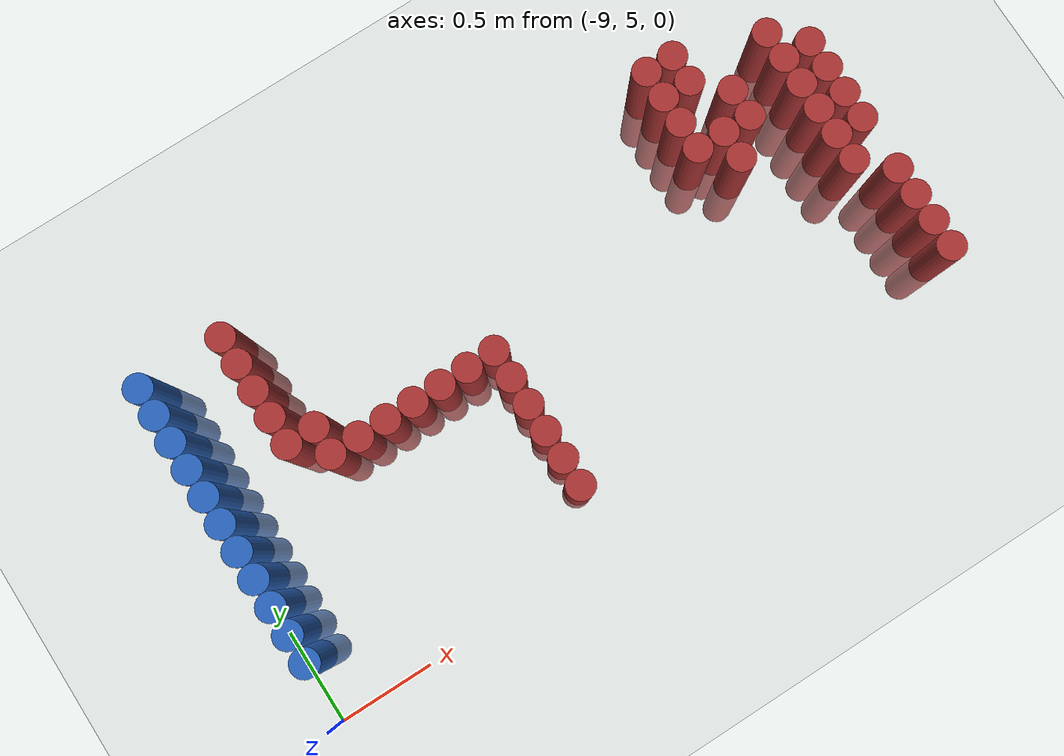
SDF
<sdf version="1.6">
 <world name="default">
  <model name="ground_plane">
   <static>1</static>
   <link name="link">
    <collision name="collision">
     <geometry><plane><normal>0 0 1</normal><size>100 100</size></plane></geometry>
     <surface><friction><ode><mu>100</mu><mu2>50</mu2></ode></friction></surface>
    </collision>
    <visual name="visual">
     <cast_shadows>0</cast_shadows>
     <geometry><plane><normal>0 0 1</normal><size>100 100</size></plane></geometry>
     <material>
      <script><uri>file://media/materials/scripts/gazebo.material</uri><name>Gazebo/Grey</name></script>
     </material>
    </visual>
   </link>
  </model>
  <model name="unit_cylinder_126">
   <static>1</static>
   <pose>-8.925000 5.325000 0.000000 0.000000 0.000000 0.000000</pose>
   <link name="link">
    <inertial>
     <mass>1</mass>
     <inertia><ixx>0.145833</ixx><ixy>0</ixy><ixz>0</ixz><iyy>0.145833</iyy><iyz>0</iyz><izz>0.125</izz></inertia>
    </inertial>
    <collision name="collision">
     <geometry><cylinder><radius>0.075000</radius><length>1</length></cylinder></geometry>
    </collision>
    <visual name="visual">
     <geometry><cylinder><radius>0.075000</radius><length>1</length></cylinder></geometry>
     <material>
      <ambient>0.152000 0.379000 0.720000 1</ambient>
      <diffuse>0.152000 0.379000 0.720000 1</diffuse>
     </material>
     <material>
      <script><name>Gazebo/Grey</name><uri>file://media/materials/scripts/gazebo.material</uri></script>
     </material>
    </visual>
   </link>
  </model>
  <model name="unit_cylinder_127">
   <static>1</static>
   <pose>-8.925000 5.475000 0.000000 0.000000 0.000000 0.000000</pose>
   <link name="link">
    <inertial>
     <mass>1</mass>
     <inertia><ixx>0.145833</ixx><ixy>0</ixy><ixz>0</ixz><iyy>0.145833</iyy><iyz>0</iyz><izz>0.125</izz></inertia>
    </inertial>
    <collision name="collision">
     <geometry><cylinder><radius>0.075000</radius><length>1</length></cylinder></geometry>
    </collision>
    <visual name="visual">
     <geometry><cylinder><radius>0.075000</radius><length>1</length></cylinder></geometry>
     <material>
      <ambient>0.152000 0.379000 0.720000 1</ambient>
      <diffuse>0.152000 0.379000 0.720000 1</diffuse>
     </material>
     <material>
      <script><name>Gazebo/Grey</name><uri>file://media/materials/scripts/gazebo.material</uri></script>
     </material>
    </visual>
   </link>
  </model>
  <model name="unit_cylinder_128">
   <static>1</static>
   <pose>-8.925000 5.625000 0.000000 0.000000 0.000000 0.000000</pose>
   <link name="link">
    <inertial>
     <mass>1</mass>
     <inertia><ixx>0.145833</ixx><ixy>0</ixy><ixz>0</ixz><iyy>0.145833</iyy><iyz>0</iyz><izz>0.125</izz></inertia>
    </inertial>
    <collision name="collision">
     <geometry><cylinder><radius>0.075000</radius><length>1</length></cylinder></geometry>
    </collision>
    <visual name="visual">
     <geometry><cylinder><radius>0.075000</radius><length>1</length></cylinder></geometry>
     <material>
      <ambient>0.152000 0.379000 0.720000 1</ambient>
      <diffuse>0.152000 0.379000 0.720000 1</diffuse>
     </material>
     <material>
      <script><name>Gazebo/Grey</name><uri>file://media/materials/scripts/gazebo.material</uri></script>
     </material>
    </visual>
   </link>
  </model>
  <model name="unit_cylinder_129">
   <static>1</static>
   <pose>-8.925000 5.775000 0.000000 0.000000 0.000000 0.000000</pose>
   <link name="link">
    <inertial>
     <mass>1</mass>
     <inertia><ixx>0.145833</ixx><ixy>0</ixy><ixz>0</ixz><iyy>0.145833</iyy><iyz>0</iyz><izz>0.125</izz></inertia>
    </inertial>
    <collision name="collision">
     <geometry><cylinder><radius>0.075000</radius><length>1</length></cylinder></geometry>
    </collision>
    <visual name="visual">
     <geometry><cylinder><radius>0.075000</radius><length>1</length></cylinder></geometry>
     <material>
      <ambient>0.152000 0.379000 0.720000 1</ambient>
      <diffuse>0.152000 0.379000 0.720000 1</diffuse>
     </material>
     <material>
      <script><name>Gazebo/Grey</name><uri>file://media/materials/scripts/gazebo.material</uri></script>
     </material>
    </visual>
   </link>
  </model>
  <model name="unit_cylinder_130">
   <static>1</static>
   <pose>-8.925000 5.925000 0.000000 0.000000 0.000000 0.000000</pose>
   <link name="link">
    <inertial>
     <mass>1</mass>
     <inertia><ixx>0.145833</ixx><ixy>0</ixy><ixz>0</ixz><iyy>0.145833</iyy><iyz>0</iyz><izz>0.125</izz></inertia>
    </inertial>
    <collision name="collision">
     <geometry><cylinder><radius>0.075000</radius><length>1</length></cylinder></geometry>
    </collision>
    <visual name="visual">
     <geometry><cylinder><radius>0.075000</radius><length>1</length></cylinder></geometry>
     <material>
      <ambient>0.152000 0.379000 0.720000 1</ambient>
      <diffuse>0.152000 0.379000 0.720000 1</diffuse>
     </material>
     <material>
      <script><name>Gazebo/Grey</name><uri>file://media/materials/scripts/gazebo.material</uri></script>
     </material>
    </visual>
   </link>
  </model>
  <model name="unit_cylinder_131">
   <static>1</static>
   <pose>-8.925000 6.075000 0.000000 0.000000 0.000000 0.000000</pose>
   <link name="link">
    <inertial>
     <mass>1</mass>
     <inertia><ixx>0.145833</ixx><ixy>0</ixy><ixz>0</ixz><iyy>0.145833</iyy><iyz>0</iyz><izz>0.125</izz></inertia>
    </inertial>
    <collision name="collision">
     <geometry><cylinder><radius>0.075000</radius><length>1</length></cylinder></geometry>
    </collision>
    <visual name="visual">
     <geometry><cylinder><radius>0.075000</radius><length>1</length></cylinder></geometry>
     <material>
      <ambient>0.152000 0.379000 0.720000 1</ambient>
      <diffuse>0.152000 0.379000 0.720000 1</diffuse>
     </material>
     <material>
      <script><name>Gazebo/Grey</name><uri>file://media/materials/scripts/gazebo.material</uri></script>
     </material>
    </visual>
   </link>
  </model>
  <model name="unit_cylinder_132">
   <static>1</static>
   <pose>-8.925000 6.225000 0.000000 0.000000 0.000000 0.000000</pose>
   <link name="link">
    <inertial>
     <mass>1</mass>
     <inertia><ixx>0.145833</ixx><ixy>0</ixy><ixz>0</ixz><iyy>0.145833</iyy><iyz>0</iyz><izz>0.125</izz></inertia>
    </inertial>
    <collision name="collision">
     <geometry><cylinder><radius>0.075000</radius><length>1</length></cylinder></geometry>
    </collision>
    <visual name="visual">
     <geometry><cylinder><radius>0.075000</radius><length>1</length></cylinder></geometry>
     <material>
      <ambient>0.152000 0.379000 0.720000 1</ambient>
      <diffuse>0.152000 0.379000 0.720000 1</diffuse>
     </material>
     <material>
      <script><name>Gazebo/Grey</name><uri>file://media/materials/scripts/gazebo.material</uri></script>
     </material>
    </visual>
   </link>
  </model>
  <model name="unit_cylinder_133">
   <static>1</static>
   <pose>-8.925000 6.375000 0.000000 0.000000 0.000000 0.000000</pose>
   <link name="link">
    <inertial>
     <mass>1</mass>
     <inertia><ixx>0.145833</ixx><ixy>0</ixy><ixz>0</ixz><iyy>0.145833</iyy><iyz>0</iyz><izz>0.125</izz></inertia>
    </inertial>
    <collision name="collision">
     <geometry><cylinder><radius>0.075000</radius><length>1</length></cylinder></geometry>
    </collision>
    <visual name="visual">
     <geometry><cylinder><radius>0.075000</radius><length>1</length></cylinder></geometry>
     <material>
      <ambient>0.152000 0.379000 0.720000 1</ambient>
      <diffuse>0.152000 0.379000 0.720000 1</diffuse>
     </material>
     <material>
      <script><name>Gazebo/Grey</name><uri>file://media/materials/scripts/gazebo.material</uri></script>
     </material>
    </visual>
   </link>
  </model>
  <model name="unit_cylinder_134">
   <static>1</static>
   <pose>-8.925000 6.525000 0.000000 0.000000 0.000000 0.000000</pose>
   <link name="link">
    <inertial>
     <mass>1</mass>
     <inertia><ixx>0.145833</ixx><ixy>0</ixy><ixz>0</ixz><iyy>0.145833</iyy><iyz>0</iyz><izz>0.125</izz></inertia>
    </inertial>
    <collision name="collision">
     <geometry><cylinder><radius>0.075000</radius><length>1</length></cylinder></geometry>
    </collision>
    <visual name="visual">
     <geometry><cylinder><radius>0.075000</radius><length>1</length></cylinder></geometry>
     <material>
      <ambient>0.152000 0.379000 0.720000 1</ambient>
      <diffuse>0.152000 0.379000 0.720000 1</diffuse>
     </material>
     <material>
      <script><name>Gazebo/Grey</name><uri>file://media/materials/scripts/gazebo.material</uri></script>
     </material>
    </visual>
   </link>
  </model>
  <model name="unit_cylinder_135">
   <static>1</static>
   <pose>-8.925000 6.675000 0.000000 0.000000 0.000000 0.000000</pose>
   <link name="link">
    <inertial>
     <mass>1</mass>
     <inertia><ixx>0.145833</ixx><ixy>0</ixy><ixz>0</ixz><iyy>0.145833</iyy><iyz>0</iyz><izz>0.125</izz></inertia>
    </inertial>
    <collision name="collision">
     <geometry><cylinder><radius>0.075000</radius><length>1</length></cylinder></geometry>
    </collision>
    <visual name="visual">
     <geometry><cylinder><radius>0.075000</radius><length>1</length></cylinder></geometry>
     <material>
      <ambient>0.152000 0.379000 0.720000 1</ambient>
      <diffuse>0.152000 0.379000 0.720000 1</diffuse>
     </material>
     <material>
      <script><name>Gazebo/Grey</name><uri>file://media/materials/scripts/gazebo.material</uri></script>
     </material>
    </visual>
   </link>
  </model>
  <model name="unit_cylinder_136">
   <static>1</static>
   <pose>-8.925000 6.825000 0.000000 0.000000 0.000000 0.000000</pose>
   <link name="link">
    <inertial>
     <mass>1</mass>
     <inertia><ixx>0.145833</ixx><ixy>0</ixy><ixz>0</ixz><iyy>0.145833</iyy><iyz>0</iyz><izz>0.125</izz></inertia>
    </inertial>
    <collision name="collision">
     <geometry><cylinder><radius>0.075000</radius><length>1</length></cylinder></geometry>
    </collision>
    <visual name="visual">
     <geometry><cylinder><radius>0.075000</radius><length>1</length></cylinder></geometry>
     <material>
      <ambient>0.152000 0.379000 0.720000 1</ambient>
      <diffuse>0.152000 0.379000 0.720000 1</diffuse>
     </material>
     <material>
      <script><name>Gazebo/Grey</name><uri>file://media/materials/scripts/gazebo.material</uri></script>
     </material>
    </visual>
   </link>
  </model>
  <model name="unit_cylinder_174">
   <static>1</static>
   <pose>-8.475000 6.225000 0.000000 0.000000 0.000000 0.000000</pose>
   <link name="link">
    <inertial>
     <mass>1</mass>
     <inertia><ixx>0.145833</ixx><ixy>0</ixy><ixz>0</ixz><iyy>0.145833</iyy><iyz>0</iyz><izz>0.125</izz></inertia>
    </inertial>
    <collision name="collision">
     <geometry><cylinder><radius>0.075000</radius><length>1</length></cylinder></geometry>
    </collision>
    <visual name="visual">
     <geometry><cylinder><radius>0.075000</radius><length>1</length></cylinder></geometry>
     <material>
      <ambient>0.648000 0.192000 0.192000 1</ambient>
      <diffuse>0.648000 0.192000 0.192000 1</diffuse>
     </material>
     <material>
      <script><name>Gazebo/Grey</name><uri>file://media/materials/scripts/gazebo.material</uri></script>
     </material>
    </visual>
   </link>
  </model>
  <model name="unit_cylinder_175">
   <static>1</static>
   <pose>-8.475000 6.375000 0.000000 0.000000 0.000000 0.000000</pose>
   <link name="link">
    <inertial>
     <mass>1</mass>
     <inertia><ixx>0.145833</ixx><ixy>0</ixy><ixz>0</ixz><iyy>0.145833</iyy><iyz>0</iyz><izz>0.125</izz></inertia>
    </inertial>
    <collision name="collision">
     <geometry><cylinder><radius>0.075000</radius><length>1</length></cylinder></geometry>
    </collision>
    <visual name="visual">
     <geometry><cylinder><radius>0.075000</radius><length>1</length></cylinder></geometry>
     <material>
      <ambient>0.648000 0.192000 0.192000 1</ambient>
      <diffuse>0.648000 0.192000 0.192000 1</diffuse>
     </material>
     <material>
      <script><name>Gazebo/Grey</name><uri>file://media/materials/scripts/gazebo.material</uri></script>
     </material>
    </visual>
   </link>
  </model>
  <model name="unit_cylinder_176">
   <static>1</static>
   <pose>-8.475000 6.525000 0.000000 0.000000 0.000000 0.000000</pose>
   <link name="link">
    <inertial>
     <mass>1</mass>
     <inertia><ixx>0.145833</ixx><ixy>0</ixy><ixz>0</ixz><iyy>0.145833</iyy><iyz>0</iyz><izz>0.125</izz></inertia>
    </inertial>
    <collision name="collision">
     <geometry><cylinder><radius>0.075000</radius><length>1</length></cylinder></geometry>
    </collision>
    <visual name="visual">
     <geometry><cylinder><radius>0.075000</radius><length>1</length></cylinder></geometry>
     <material>
      <ambient>0.648000 0.192000 0.192000 1</ambient>
      <diffuse>0.648000 0.192000 0.192000 1</diffuse>
     </material>
     <material>
      <script><name>Gazebo/Grey</name><uri>file://media/materials/scripts/gazebo.material</uri></script>
     </material>
    </visual>
   </link>
  </model>
  <model name="unit_cylinder_177">
   <static>1</static>
   <pose>-8.475000 6.675000 0.000000 0.000000 0.000000 0.000000</pose>
   <link name="link">
    <inertial>
     <mass>1</mass>
     <inertia><ixx>0.145833</ixx><ixy>0</ixy><ixz>0</ixz><iyy>0.145833</iyy><iyz>0</iyz><izz>0.125</izz></inertia>
    </inertial>
    <collision name="collision">
     <geometry><cylinder><radius>0.075000</radius><length>1</length></cylinder></geometry>
    </collision>
    <visual name="visual">
     <geometry><cylinder><radius>0.075000</radius><length>1</length></cylinder></geometry>
     <material>
      <ambient>0.648000 0.192000 0.192000 1</ambient>
      <diffuse>0.648000 0.192000 0.192000 1</diffuse>
     </material>
     <material>
      <script><name>Gazebo/Grey</name><uri>file://media/materials/scripts/gazebo.material</uri></script>
     </material>
    </visual>
   </link>
  </model>
  <model name="unit_cylinder_178">
   <static>1</static>
   <pose>-8.475000 6.825000 0.000000 0.000000 0.000000 0.000000</pose>
   <link name="link">
    <inertial>
     <mass>1</mass>
     <inertia><ixx>0.145833</ixx><ixy>0</ixy><ixz>0</ixz><iyy>0.145833</iyy><iyz>0</iyz><izz>0.125</izz></inertia>
    </inertial>
    <collision name="collision">
     <geometry><cylinder><radius>0.075000</radius><length>1</length></cylinder></geometry>
    </collision>
    <visual name="visual">
     <geometry><cylinder><radius>0.075000</radius><length>1</length></cylinder></geometry>
     <material>
      <ambient>0.648000 0.192000 0.192000 1</ambient>
      <diffuse>0.648000 0.192000 0.192000 1</diffuse>
     </material>
     <material>
      <script><name>Gazebo/Grey</name><uri>file://media/materials/scripts/gazebo.material</uri></script>
     </material>
    </visual>
   </link>
  </model>
  <model name="unit_cylinder_184">
   <static>1</static>
   <pose>-8.325000 6.075000 0.000000 0.000000 0.000000 0.000000</pose>
   <link name="link">
    <inertial>
     <mass>1</mass>
     <inertia><ixx>0.145833</ixx><ixy>0</ixy><ixz>0</ixz><iyy>0.145833</iyy><iyz>0</iyz><izz>0.125</izz></inertia>
    </inertial>
    <collision name="collision">
     <geometry><cylinder><radius>0.075000</radius><length>1</length></cylinder></geometry>
    </collision>
    <visual name="visual">
     <geometry><cylinder><radius>0.075000</radius><length>1</length></cylinder></geometry>
     <material>
      <ambient>0.648000 0.192000 0.192000 1</ambient>
      <diffuse>0.648000 0.192000 0.192000 1</diffuse>
     </material>
     <material>
      <script><name>Gazebo/Grey</name><uri>file://media/materials/scripts/gazebo.material</uri></script>
     </material>
    </visual>
   </link>
  </model>
  <model name="unit_cylinder_185">
   <static>1</static>
   <pose>-8.325000 6.225000 0.000000 0.000000 0.000000 0.000000</pose>
   <link name="link">
    <inertial>
     <mass>1</mass>
     <inertia><ixx>0.145833</ixx><ixy>0</ixy><ixz>0</ixz><iyy>0.145833</iyy><iyz>0</iyz><izz>0.125</izz></inertia>
    </inertial>
    <collision name="collision">
     <geometry><cylinder><radius>0.075000</radius><length>1</length></cylinder></geometry>
    </collision>
    <visual name="visual">
     <geometry><cylinder><radius>0.075000</radius><length>1</length></cylinder></geometry>
     <material>
      <ambient>0.648000 0.192000 0.192000 1</ambient>
      <diffuse>0.648000 0.192000 0.192000 1</diffuse>
     </material>
     <material>
      <script><name>Gazebo/Grey</name><uri>file://media/materials/scripts/gazebo.material</uri></script>
     </material>
    </visual>
   </link>
  </model>
  <model name="unit_cylinder_187">
   <static>1</static>
   <pose>-8.175000 6.075000 0.000000 0.000000 0.000000 0.000000</pose>
   <link name="link">
    <inertial>
     <mass>1</mass>
     <inertia><ixx>0.145833</ixx><ixy>0</ixy><ixz>0</ixz><iyy>0.145833</iyy><iyz>0</iyz><izz>0.125</izz></inertia>
    </inertial>
    <collision name="collision">
     <geometry><cylinder><radius>0.075000</radius><length>1</length></cylinder></geometry>
    </collision>
    <visual name="visual">
     <geometry><cylinder><radius>0.075000</radius><length>1</length></cylinder></geometry>
     <material>
      <ambient>0.648000 0.192000 0.192000 1</ambient>
      <diffuse>0.648000 0.192000 0.192000 1</diffuse>
     </material>
     <material>
      <script><name>Gazebo/Grey</name><uri>file://media/materials/scripts/gazebo.material</uri></script>
     </material>
    </visual>
   </link>
  </model>
  <model name="unit_cylinder_189">
   <static>1</static>
   <pose>-8.025000 6.075000 0.000000 0.000000 0.000000 0.000000</pose>
   <link name="link">
    <inertial>
     <mass>1</mass>
     <inertia><ixx>0.145833</ixx><ixy>0</ixy><ixz>0</ixz><iyy>0.145833</iyy><iyz>0</iyz><izz>0.125</izz></inertia>
    </inertial>
    <collision name="collision">
     <geometry><cylinder><radius>0.075000</radius><length>1</length></cylinder></geometry>
    </collision>
    <visual name="visual">
     <geometry><cylinder><radius>0.075000</radius><length>1</length></cylinder></geometry>
     <material>
      <ambient>0.648000 0.192000 0.192000 1</ambient>
      <diffuse>0.648000 0.192000 0.192000 1</diffuse>
     </material>
     <material>
      <script><name>Gazebo/Grey</name><uri>file://media/materials/scripts/gazebo.material</uri></script>
     </material>
    </visual>
   </link>
  </model>
  <model name="unit_cylinder_191">
   <static>1</static>
   <pose>-7.875000 6.075000 0.000000 0.000000 0.000000 0.000000</pose>
   <link name="link">
    <inertial>
     <mass>1</mass>
     <inertia><ixx>0.145833</ixx><ixy>0</ixy><ixz>0</ixz><iyy>0.145833</iyy><iyz>0</iyz><izz>0.125</izz></inertia>
    </inertial>
    <collision name="collision">
     <geometry><cylinder><radius>0.075000</radius><length>1</length></cylinder></geometry>
    </collision>
    <visual name="visual">
     <geometry><cylinder><radius>0.075000</radius><length>1</length></cylinder></geometry>
     <material>
      <ambient>0.648000 0.192000 0.192000 1</ambient>
      <diffuse>0.648000 0.192000 0.192000 1</diffuse>
     </material>
     <material>
      <script><name>Gazebo/Grey</name><uri>file://media/materials/scripts/gazebo.material</uri></script>
     </material>
    </visual>
   </link>
  </model>
  <model name="unit_cylinder_193">
   <static>1</static>
   <pose>-7.725000 6.075000 0.000000 0.000000 0.000000 0.000000</pose>
   <link name="link">
    <inertial>
     <mass>1</mass>
     <inertia><ixx>0.145833</ixx><ixy>0</ixy><ixz>0</ixz><iyy>0.145833</iyy><iyz>0</iyz><izz>0.125</izz></inertia>
    </inertial>
    <collision name="collision">
     <geometry><cylinder><radius>0.075000</radius><length>1</length></cylinder></geometry>
    </collision>
    <visual name="visual">
     <geometry><cylinder><radius>0.075000</radius><length>1</length></cylinder></geometry>
     <material>
      <ambient>0.648000 0.192000 0.192000 1</ambient>
      <diffuse>0.648000 0.192000 0.192000 1</diffuse>
     </material>
     <material>
      <script><name>Gazebo/Grey</name><uri>file://media/materials/scripts/gazebo.material</uri></script>
     </material>
    </visual>
   </link>
  </model>
  <model name="unit_cylinder_195">
   <static>1</static>
   <pose>-7.575000 6.075000 0.000000 0.000000 0.000000 0.000000</pose>
   <link name="link">
    <inertial>
     <mass>1</mass>
     <inertia><ixx>0.145833</ixx><ixy>0</ixy><ixz>0</ixz><iyy>0.145833</iyy><iyz>0</iyz><izz>0.125</izz></inertia>
    </inertial>
    <collision name="collision">
     <geometry><cylinder><radius>0.075000</radius><length>1</length></cylinder></geometry>
    </collision>
    <visual name="visual">
     <geometry><cylinder><radius>0.075000</radius><length>1</length></cylinder></geometry>
     <material>
      <ambient>0.648000 0.192000 0.192000 1</ambient>
      <diffuse>0.648000 0.192000 0.192000 1</diffuse>
     </material>
     <material>
      <script><name>Gazebo/Grey</name><uri>file://media/materials/scripts/gazebo.material</uri></script>
     </material>
    </visual>
   </link>
  </model>
  <model name="unit_cylinder_197">
   <static>1</static>
   <pose>-7.425000 5.325000 0.000000 0.000000 0.000000 0.000000</pose>
   <link name="link">
    <inertial>
     <mass>1</mass>
     <inertia><ixx>0.145833</ixx><ixy>0</ixy><ixz>0</ixz><iyy>0.145833</iyy><iyz>0</iyz><izz>0.125</izz></inertia>
    </inertial>
    <collision name="collision">
     <geometry><cylinder><radius>0.075000</radius><length>1</length></cylinder></geometry>
    </collision>
    <visual name="visual">
     <geometry><cylinder><radius>0.075000</radius><length>1</length></cylinder></geometry>
     <material>
      <ambient>0.648000 0.192000 0.192000 1</ambient>
      <diffuse>0.648000 0.192000 0.192000 1</diffuse>
     </material>
     <material>
      <script><name>Gazebo/Grey</name><uri>file://media/materials/scripts/gazebo.material</uri></script>
     </material>
    </visual>
   </link>
  </model>
  <model name="unit_cylinder_198">
   <static>1</static>
   <pose>-7.425000 5.475000 0.000000 0.000000 0.000000 0.000000</pose>
   <link name="link">
    <inertial>
     <mass>1</mass>
     <inertia><ixx>0.145833</ixx><ixy>0</ixy><ixz>0</ixz><iyy>0.145833</iyy><iyz>0</iyz><izz>0.125</izz></inertia>
    </inertial>
    <collision name="collision">
     <geometry><cylinder><radius>0.075000</radius><length>1</length></cylinder></geometry>
    </collision>
    <visual name="visual">
     <geometry><cylinder><radius>0.075000</radius><length>1</length></cylinder></geometry>
     <material>
      <ambient>0.648000 0.192000 0.192000 1</ambient>
      <diffuse>0.648000 0.192000 0.192000 1</diffuse>
     </material>
     <material>
      <script><name>Gazebo/Grey</name><uri>file://media/materials/scripts/gazebo.material</uri></script>
     </material>
    </visual>
   </link>
  </model>
  <model name="unit_cylinder_199">
   <static>1</static>
   <pose>-7.425000 5.625000 0.000000 0.000000 0.000000 0.000000</pose>
   <link name="link">
    <inertial>
     <mass>1</mass>
     <inertia><ixx>0.145833</ixx><ixy>0</ixy><ixz>0</ixz><iyy>0.145833</iyy><iyz>0</iyz><izz>0.125</izz></inertia>
    </inertial>
    <collision name="collision">
     <geometry><cylinder><radius>0.075000</radius><length>1</length></cylinder></geometry>
    </collision>
    <visual name="visual">
     <geometry><cylinder><radius>0.075000</radius><length>1</length></cylinder></geometry>
     <material>
      <ambient>0.648000 0.192000 0.192000 1</ambient>
      <diffuse>0.648000 0.192000 0.192000 1</diffuse>
     </material>
     <material>
      <script><name>Gazebo/Grey</name><uri>file://media/materials/scripts/gazebo.material</uri></script>
     </material>
    </visual>
   </link>
  </model>
  <model name="unit_cylinder_200">
   <static>1</static>
   <pose>-7.425000 5.775000 0.000000 0.000000 0.000000 0.000000</pose>
   <link name="link">
    <inertial>
     <mass>1</mass>
     <inertia><ixx>0.145833</ixx><ixy>0</ixy><ixz>0</ixz><iyy>0.145833</iyy><iyz>0</iyz><izz>0.125</izz></inertia>
    </inertial>
    <collision name="collision">
     <geometry><cylinder><radius>0.075000</radius><length>1</length></cylinder></geometry>
    </collision>
    <visual name="visual">
     <geometry><cylinder><radius>0.075000</radius><length>1</length></cylinder></geometry>
     <material>
      <ambient>0.648000 0.192000 0.192000 1</ambient>
      <diffuse>0.648000 0.192000 0.192000 1</diffuse>
     </material>
     <material>
      <script><name>Gazebo/Grey</name><uri>file://media/materials/scripts/gazebo.material</uri></script>
     </material>
    </visual>
   </link>
  </model>
  <model name="unit_cylinder_201">
   <static>1</static>
   <pose>-7.425000 5.925000 0.000000 0.000000 0.000000 0.000000</pose>
   <link name="link">
    <inertial>
     <mass>1</mass>
     <inertia><ixx>0.145833</ixx><ixy>0</ixy><ixz>0</ixz><iyy>0.145833</iyy><iyz>0</iyz><izz>0.125</izz></inertia>
    </inertial>
    <collision name="collision">
     <geometry><cylinder><radius>0.075000</radius><length>1</length></cylinder></geometry>
    </collision>
    <visual name="visual">
     <geometry><cylinder><radius>0.075000</radius><length>1</length></cylinder></geometry>
     <material>
      <ambient>0.648000 0.192000 0.192000 1</ambient>
      <diffuse>0.648000 0.192000 0.192000 1</diffuse>
     </material>
     <material>
      <script><name>Gazebo/Grey</name><uri>file://media/materials/scripts/gazebo.material</uri></script>
     </material>
    </visual>
   </link>
  </model>
  <model name="unit_cylinder_202">
   <static>1</static>
   <pose>-7.425000 6.075000 0.000000 0.000000 0.000000 0.000000</pose>
   <link name="link">
    <inertial>
     <mass>1</mass>
     <inertia><ixx>0.145833</ixx><ixy>0</ixy><ixz>0</ixz><iyy>0.145833</iyy><iyz>0</iyz><izz>0.125</izz></inertia>
    </inertial>
    <collision name="collision">
     <geometry><cylinder><radius>0.075000</radius><length>1</length></cylinder></geometry>
    </collision>
    <visual name="visual">
     <geometry><cylinder><radius>0.075000</radius><length>1</length></cylinder></geometry>
     <material>
      <ambient>0.648000 0.192000 0.192000 1</ambient>
      <diffuse>0.648000 0.192000 0.192000 1</diffuse>
     </material>
     <material>
      <script><name>Gazebo/Grey</name><uri>file://media/materials/scripts/gazebo.material</uri></script>
     </material>
    </visual>
   </link>
  </model>
  <model name="unit_cylinder_218">
   <static>1</static>
   <pose>-6.075000 6.375000 0.000000 0.000000 0.000000 0.000000</pose>
   <link name="link">
    <inertial>
     <mass>1</mass>
     <inertia><ixx>0.145833</ixx><ixy>0</ixy><ixz>0</ixz><iyy>0.145833</iyy><iyz>0</iyz><izz>0.125</izz></inertia>
    </inertial>
    <collision name="collision">
     <geometry><cylinder><radius>0.075000</radius><length>1</length></cylinder></geometry>
    </collision>
    <visual name="visual">
     <geometry><cylinder><radius>0.075000</radius><length>1</length></cylinder></geometry>
     <material>
      <ambient>0.648000 0.192000 0.192000 1</ambient>
      <diffuse>0.648000 0.192000 0.192000 1</diffuse>
     </material>
     <material>
      <script><name>Gazebo/Grey</name><uri>file://media/materials/scripts/gazebo.material</uri></script>
     </material>
    </visual>
   </link>
  </model>
  <model name="unit_cylinder_219">
   <static>1</static>
   <pose>-6.075000 6.525000 0.000000 0.000000 0.000000 0.000000</pose>
   <link name="link">
    <inertial>
     <mass>1</mass>
     <inertia><ixx>0.145833</ixx><ixy>0</ixy><ixz>0</ixz><iyy>0.145833</iyy><iyz>0</iyz><izz>0.125</izz></inertia>
    </inertial>
    <collision name="collision">
     <geometry><cylinder><radius>0.075000</radius><length>1</length></cylinder></geometry>
    </collision>
    <visual name="visual">
     <geometry><cylinder><radius>0.075000</radius><length>1</length></cylinder></geometry>
     <material>
      <ambient>0.648000 0.192000 0.192000 1</ambient>
      <diffuse>0.648000 0.192000 0.192000 1</diffuse>
     </material>
     <material>
      <script><name>Gazebo/Grey</name><uri>file://media/materials/scripts/gazebo.material</uri></script>
     </material>
    </visual>
   </link>
  </model>
  <model name="unit_cylinder_220">
   <static>1</static>
   <pose>-6.075000 6.675000 0.000000 0.000000 0.000000 0.000000</pose>
   <link name="link">
    <inertial>
     <mass>1</mass>
     <inertia><ixx>0.145833</ixx><ixy>0</ixy><ixz>0</ixz><iyy>0.145833</iyy><iyz>0</iyz><izz>0.125</izz></inertia>
    </inertial>
    <collision name="collision">
     <geometry><cylinder><radius>0.075000</radius><length>1</length></cylinder></geometry>
    </collision>
    <visual name="visual">
     <geometry><cylinder><radius>0.075000</radius><length>1</length></cylinder></geometry>
     <material>
      <ambient>0.648000 0.192000 0.192000 1</ambient>
      <diffuse>0.648000 0.192000 0.192000 1</diffuse>
     </material>
     <material>
      <script><name>Gazebo/Grey</name><uri>file://media/materials/scripts/gazebo.material</uri></script>
     </material>
    </visual>
   </link>
  </model>
  <model name="unit_cylinder_221">
   <static>1</static>
   <pose>-6.075000 6.825000 0.000000 0.000000 0.000000 0.000000</pose>
   <link name="link">
    <inertial>
     <mass>1</mass>
     <inertia><ixx>0.145833</ixx><ixy>0</ixy><ixz>0</ixz><iyy>0.145833</iyy><iyz>0</iyz><izz>0.125</izz></inertia>
    </inertial>
    <collision name="collision">
     <geometry><cylinder><radius>0.075000</radius><length>1</length></cylinder></geometry>
    </collision>
    <visual name="visual">
     <geometry><cylinder><radius>0.075000</radius><length>1</length></cylinder></geometry>
     <material>
      <ambient>0.648000 0.192000 0.192000 1</ambient>
      <diffuse>0.648000 0.192000 0.192000 1</diffuse>
     </material>
     <material>
      <script><name>Gazebo/Grey</name><uri>file://media/materials/scripts/gazebo.material</uri></script>
     </material>
    </visual>
   </link>
  </model>
  <model name="unit_cylinder_222">
   <static>1</static>
   <pose>-5.925000 6.225000 0.000000 0.000000 0.000000 0.000000</pose>
   <link name="link">
    <inertial>
     <mass>1</mass>
     <inertia><ixx>0.145833</ixx><ixy>0</ixy><ixz>0</ixz><iyy>0.145833</iyy><iyz>0</iyz><izz>0.125</izz></inertia>
    </inertial>
    <collision name="collision">
     <geometry><cylinder><radius>0.075000</radius><length>1</length></cylinder></geometry>
    </collision>
    <visual name="visual">
     <geometry><cylinder><radius>0.075000</radius><length>1</length></cylinder></geometry>
     <material>
      <ambient>0.648000 0.192000 0.192000 1</ambient>
      <diffuse>0.648000 0.192000 0.192000 1</diffuse>
     </material>
     <material>
      <script><name>Gazebo/Grey</name><uri>file://media/materials/scripts/gazebo.material</uri></script>
     </material>
    </visual>
   </link>
  </model>
  <model name="unit_cylinder_223">
   <static>1</static>
   <pose>-5.925000 6.375000 0.000000 0.000000 0.000000 0.000000</pose>
   <link name="link">
    <inertial>
     <mass>1</mass>
     <inertia><ixx>0.145833</ixx><ixy>0</ixy><ixz>0</ixz><iyy>0.145833</iyy><iyz>0</iyz><izz>0.125</izz></inertia>
    </inertial>
    <collision name="collision">
     <geometry><cylinder><radius>0.075000</radius><length>1</length></cylinder></geometry>
    </collision>
    <visual name="visual">
     <geometry><cylinder><radius>0.075000</radius><length>1</length></cylinder></geometry>
     <material>
      <ambient>0.648000 0.192000 0.192000 1</ambient>
      <diffuse>0.648000 0.192000 0.192000 1</diffuse>
     </material>
     <material>
      <script><name>Gazebo/Grey</name><uri>file://media/materials/scripts/gazebo.material</uri></script>
     </material>
    </visual>
   </link>
  </model>
  <model name="unit_cylinder_224">
   <static>1</static>
   <pose>-5.925000 6.675000 0.000000 0.000000 0.000000 0.000000</pose>
   <link name="link">
    <inertial>
     <mass>1</mass>
     <inertia><ixx>0.145833</ixx><ixy>0</ixy><ixz>0</ixz><iyy>0.145833</iyy><iyz>0</iyz><izz>0.125</izz></inertia>
    </inertial>
    <collision name="collision">
     <geometry><cylinder><radius>0.075000</radius><length>1</length></cylinder></geometry>
    </collision>
    <visual name="visual">
     <geometry><cylinder><radius>0.075000</radius><length>1</length></cylinder></geometry>
     <material>
      <ambient>0.648000 0.192000 0.192000 1</ambient>
      <diffuse>0.648000 0.192000 0.192000 1</diffuse>
     </material>
     <material>
      <script><name>Gazebo/Grey</name><uri>file://media/materials/scripts/gazebo.material</uri></script>
     </material>
    </visual>
   </link>
  </model>
  <model name="unit_cylinder_225">
   <static>1</static>
   <pose>-5.925000 6.825000 0.000000 0.000000 0.000000 0.000000</pose>
   <link name="link">
    <inertial>
     <mass>1</mass>
     <inertia><ixx>0.145833</ixx><ixy>0</ixy><ixz>0</ixz><iyy>0.145833</iyy><iyz>0</iyz><izz>0.125</izz></inertia>
    </inertial>
    <collision name="collision">
     <geometry><cylinder><radius>0.075000</radius><length>1</length></cylinder></geometry>
    </collision>
    <visual name="visual">
     <geometry><cylinder><radius>0.075000</radius><length>1</length></cylinder></geometry>
     <material>
      <ambient>0.648000 0.192000 0.192000 1</ambient>
      <diffuse>0.648000 0.192000 0.192000 1</diffuse>
     </material>
     <material>
      <script><name>Gazebo/Grey</name><uri>file://media/materials/scripts/gazebo.material</uri></script>
     </material>
    </visual>
   </link>
  </model>
  <model name="unit_cylinder_226">
   <static>1</static>
   <pose>-5.775000 6.375000 0.000000 0.000000 0.000000 0.000000</pose>
   <link name="link">
    <inertial>
     <mass>1</mass>
     <inertia><ixx>0.145833</ixx><ixy>0</ixy><ixz>0</ixz><iyy>0.145833</iyy><iyz>0</iyz><izz>0.125</izz></inertia>
    </inertial>
    <collision name="collision">
     <geometry><cylinder><radius>0.075000</radius><length>1</length></cylinder></geometry>
    </collision>
    <visual name="visual">
     <geometry><cylinder><radius>0.075000</radius><length>1</length></cylinder></geometry>
     <material>
      <ambient>0.648000 0.192000 0.192000 1</ambient>
      <diffuse>0.648000 0.192000 0.192000 1</diffuse>
     </material>
     <material>
      <script><name>Gazebo/Grey</name><uri>file://media/materials/scripts/gazebo.material</uri></script>
     </material>
    </visual>
   </link>
  </model>
  <model name="unit_cylinder_227">
   <static>1</static>
   <pose>-5.775000 6.525000 0.000000 0.000000 0.000000 0.000000</pose>
   <link name="link">
    <inertial>
     <mass>1</mass>
     <inertia><ixx>0.145833</ixx><ixy>0</ixy><ixz>0</ixz><iyy>0.145833</iyy><iyz>0</iyz><izz>0.125</izz></inertia>
    </inertial>
    <collision name="collision">
     <geometry><cylinder><radius>0.075000</radius><length>1</length></cylinder></geometry>
    </collision>
    <visual name="visual">
     <geometry><cylinder><radius>0.075000</radius><length>1</length></cylinder></geometry>
     <material>
      <ambient>0.648000 0.192000 0.192000 1</ambient>
      <diffuse>0.648000 0.192000 0.192000 1</diffuse>
     </material>
     <material>
      <script><name>Gazebo/Grey</name><uri>file://media/materials/scripts/gazebo.material</uri></script>
     </material>
    </visual>
   </link>
  </model>
  <model name="unit_cylinder_228">
   <static>1</static>
   <pose>-5.475000 5.925000 0.000000 0.000000 0.000000 0.000000</pose>
   <link name="link">
    <inertial>
     <mass>1</mass>
     <inertia><ixx>0.145833</ixx><ixy>0</ixy><ixz>0</ixz><iyy>0.145833</iyy><iyz>0</iyz><izz>0.125</izz></inertia>
    </inertial>
    <collision name="collision">
     <geometry><cylinder><radius>0.075000</radius><length>1</length></cylinder></geometry>
    </collision>
    <visual name="visual">
     <geometry><cylinder><radius>0.075000</radius><length>1</length></cylinder></geometry>
     <material>
      <ambient>0.648000 0.192000 0.192000 1</ambient>
      <diffuse>0.648000 0.192000 0.192000 1</diffuse>
     </material>
     <material>
      <script><name>Gazebo/Grey</name><uri>file://media/materials/scripts/gazebo.material</uri></script>
     </material>
    </visual>
   </link>
  </model>
  <model name="unit_cylinder_229">
   <static>1</static>
   <pose>-5.475000 6.075000 0.000000 0.000000 0.000000 0.000000</pose>
   <link name="link">
    <inertial>
     <mass>1</mass>
     <inertia><ixx>0.145833</ixx><ixy>0</ixy><ixz>0</ixz><iyy>0.145833</iyy><iyz>0</iyz><izz>0.125</izz></inertia>
    </inertial>
    <collision name="collision">
     <geometry><cylinder><radius>0.075000</radius><length>1</length></cylinder></geometry>
    </collision>
    <visual name="visual">
     <geometry><cylinder><radius>0.075000</radius><length>1</length></cylinder></geometry>
     <material>
      <ambient>0.648000 0.192000 0.192000 1</ambient>
      <diffuse>0.648000 0.192000 0.192000 1</diffuse>
     </material>
     <material>
      <script><name>Gazebo/Grey</name><uri>file://media/materials/scripts/gazebo.material</uri></script>
     </material>
    </visual>
   </link>
  </model>
  <model name="unit_cylinder_230">
   <static>1</static>
   <pose>-5.475000 6.225000 0.000000 0.000000 0.000000 0.000000</pose>
   <link name="link">
    <inertial>
     <mass>1</mass>
     <inertia><ixx>0.145833</ixx><ixy>0</ixy><ixz>0</ixz><iyy>0.145833</iyy><iyz>0</iyz><izz>0.125</izz></inertia>
    </inertial>
    <collision name="collision">
     <geometry><cylinder><radius>0.075000</radius><length>1</length></cylinder></geometry>
    </collision>
    <visual name="visual">
     <geometry><cylinder><radius>0.075000</radius><length>1</length></cylinder></geometry>
     <material>
      <ambient>0.648000 0.192000 0.192000 1</ambient>
      <diffuse>0.648000 0.192000 0.192000 1</diffuse>
     </material>
     <material>
      <script><name>Gazebo/Grey</name><uri>file://media/materials/scripts/gazebo.material</uri></script>
     </material>
    </visual>
   </link>
  </model>
  <model name="unit_cylinder_231">
   <static>1</static>
   <pose>-5.475000 6.375000 0.000000 0.000000 0.000000 0.000000</pose>
   <link name="link">
    <inertial>
     <mass>1</mass>
     <inertia><ixx>0.145833</ixx><ixy>0</ixy><ixz>0</ixz><iyy>0.145833</iyy><iyz>0</iyz><izz>0.125</izz></inertia>
    </inertial>
    <collision name="collision">
     <geometry><cylinder><radius>0.075000</radius><length>1</length></cylinder></geometry>
    </collision>
    <visual name="visual">
     <geometry><cylinder><radius>0.075000</radius><length>1</length></cylinder></geometry>
     <material>
      <ambient>0.648000 0.192000 0.192000 1</ambient>
      <diffuse>0.648000 0.192000 0.192000 1</diffuse>
     </material>
     <material>
      <script><name>Gazebo/Grey</name><uri>file://media/materials/scripts/gazebo.material</uri></script>
     </material>
    </visual>
   </link>
  </model>
  <model name="unit_cylinder_232">
   <static>1</static>
   <pose>-5.475000 6.525000 0.000000 0.000000 0.000000 0.000000</pose>
   <link name="link">
    <inertial>
     <mass>1</mass>
     <inertia><ixx>0.145833</ixx><ixy>0</ixy><ixz>0</ixz><iyy>0.145833</iyy><iyz>0</iyz><izz>0.125</izz></inertia>
    </inertial>
    <collision name="collision">
     <geometry><cylinder><radius>0.075000</radius><length>1</length></cylinder></geometry>
    </collision>
    <visual name="visual">
     <geometry><cylinder><radius>0.075000</radius><length>1</length></cylinder></geometry>
     <material>
      <ambient>0.648000 0.192000 0.192000 1</ambient>
      <diffuse>0.648000 0.192000 0.192000 1</diffuse>
     </material>
     <material>
      <script><name>Gazebo/Grey</name><uri>file://media/materials/scripts/gazebo.material</uri></script>
     </material>
    </visual>
   </link>
  </model>
  <model name="unit_cylinder_233">
   <static>1</static>
   <pose>-5.475000 6.675000 0.000000 0.000000 0.000000 0.000000</pose>
   <link name="link">
    <inertial>
     <mass>1</mass>
     <inertia><ixx>0.145833</ixx><ixy>0</ixy><ixz>0</ixz><iyy>0.145833</iyy><iyz>0</iyz><izz>0.125</izz></inertia>
    </inertial>
    <collision name="collision">
     <geometry><cylinder><radius>0.075000</radius><length>1</length></cylinder></geometry>
    </collision>
    <visual name="visual">
     <geometry><cylinder><radius>0.075000</radius><length>1</length></cylinder></geometry>
     <material>
      <ambient>0.648000 0.192000 0.192000 1</ambient>
      <diffuse>0.648000 0.192000 0.192000 1</diffuse>
     </material>
     <material>
      <script><name>Gazebo/Grey</name><uri>file://media/materials/scripts/gazebo.material</uri></script>
     </material>
    </visual>
   </link>
  </model>
  <model name="unit_cylinder_234">
   <static>1</static>
   <pose>-5.325000 5.325000 0.000000 0.000000 0.000000 0.000000</pose>
   <link name="link">
    <inertial>
     <mass>1</mass>
     <inertia><ixx>0.145833</ixx><ixy>0</ixy><ixz>0</ixz><iyy>0.145833</iyy><iyz>0</iyz><izz>0.125</izz></inertia>
    </inertial>
    <collision name="collision">
     <geometry><cylinder><radius>0.075000</radius><length>1</length></cylinder></geometry>
    </collision>
    <visual name="visual">
     <geometry><cylinder><radius>0.075000</radius><length>1</length></cylinder></geometry>
     <material>
      <ambient>0.648000 0.192000 0.192000 1</ambient>
      <diffuse>0.648000 0.192000 0.192000 1</diffuse>
     </material>
     <material>
      <script><name>Gazebo/Grey</name><uri>file://media/materials/scripts/gazebo.material</uri></script>
     </material>
    </visual>
   </link>
  </model>
  <model name="unit_cylinder_235">
   <static>1</static>
   <pose>-5.325000 5.475000 0.000000 0.000000 0.000000 0.000000</pose>
   <link name="link">
    <inertial>
     <mass>1</mass>
     <inertia><ixx>0.145833</ixx><ixy>0</ixy><ixz>0</ixz><iyy>0.145833</iyy><iyz>0</iyz><izz>0.125</izz></inertia>
    </inertial>
    <collision name="collision">
     <geometry><cylinder><radius>0.075000</radius><length>1</length></cylinder></geometry>
    </collision>
    <visual name="visual">
     <geometry><cylinder><radius>0.075000</radius><length>1</length></cylinder></geometry>
     <material>
      <ambient>0.648000 0.192000 0.192000 1</ambient>
      <diffuse>0.648000 0.192000 0.192000 1</diffuse>
     </material>
     <material>
      <script><name>Gazebo/Grey</name><uri>file://media/materials/scripts/gazebo.material</uri></script>
     </material>
    </visual>
   </link>
  </model>
  <model name="unit_cylinder_236">
   <static>1</static>
   <pose>-5.325000 5.625000 0.000000 0.000000 0.000000 0.000000</pose>
   <link name="link">
    <inertial>
     <mass>1</mass>
     <inertia><ixx>0.145833</ixx><ixy>0</ixy><ixz>0</ixz><iyy>0.145833</iyy><iyz>0</iyz><izz>0.125</izz></inertia>
    </inertial>
    <collision name="collision">
     <geometry><cylinder><radius>0.075000</radius><length>1</length></cylinder></geometry>
    </collision>
    <visual name="visual">
     <geometry><cylinder><radius>0.075000</radius><length>1</length></cylinder></geometry>
     <material>
      <ambient>0.648000 0.192000 0.192000 1</ambient>
      <diffuse>0.648000 0.192000 0.192000 1</diffuse>
     </material>
     <material>
      <script><name>Gazebo/Grey</name><uri>file://media/materials/scripts/gazebo.material</uri></script>
     </material>
    </visual>
   </link>
  </model>
  <model name="unit_cylinder_237">
   <static>1</static>
   <pose>-5.325000 5.775000 0.000000 0.000000 0.000000 0.000000</pose>
   <link name="link">
    <inertial>
     <mass>1</mass>
     <inertia><ixx>0.145833</ixx><ixy>0</ixy><ixz>0</ixz><iyy>0.145833</iyy><iyz>0</iyz><izz>0.125</izz></inertia>
    </inertial>
    <collision name="collision">
     <geometry><cylinder><radius>0.075000</radius><length>1</length></cylinder></geometry>
    </collision>
    <visual name="visual">
     <geometry><cylinder><radius>0.075000</radius><length>1</length></cylinder></geometry>
     <material>
      <ambient>0.648000 0.192000 0.192000 1</ambient>
      <diffuse>0.648000 0.192000 0.192000 1</diffuse>
     </material>
     <material>
      <script><name>Gazebo/Grey</name><uri>file://media/materials/scripts/gazebo.material</uri></script>
     </material>
    </visual>
   </link>
  </model>
  <model name="unit_cylinder_238">
   <static>1</static>
   <pose>-5.325000 6.075000 0.000000 0.000000 0.000000 0.000000</pose>
   <link name="link">
    <inertial>
     <mass>1</mass>
     <inertia><ixx>0.145833</ixx><ixy>0</ixy><ixz>0</ixz><iyy>0.145833</iyy><iyz>0</iyz><izz>0.125</izz></inertia>
    </inertial>
    <collision name="collision">
     <geometry><cylinder><radius>0.075000</radius><length>1</length></cylinder></geometry>
    </collision>
    <visual name="visual">
     <geometry><cylinder><radius>0.075000</radius><length>1</length></cylinder></geometry>
     <material>
      <ambient>0.648000 0.192000 0.192000 1</ambient>
      <diffuse>0.648000 0.192000 0.192000 1</diffuse>
     </material>
     <material>
      <script><name>Gazebo/Grey</name><uri>file://media/materials/scripts/gazebo.material</uri></script>
     </material>
    </visual>
   </link>
  </model>
  <model name="unit_cylinder_239">
   <static>1</static>
   <pose>-5.325000 6.225000 0.000000 0.000000 0.000000 0.000000</pose>
   <link name="link">
    <inertial>
     <mass>1</mass>
     <inertia><ixx>0.145833</ixx><ixy>0</ixy><ixz>0</ixz><iyy>0.145833</iyy><iyz>0</iyz><izz>0.125</izz></inertia>
    </inertial>
    <collision name="collision">
     <geometry><cylinder><radius>0.075000</radius><length>1</length></cylinder></geometry>
    </collision>
    <visual name="visual">
     <geometry><cylinder><radius>0.075000</radius><length>1</length></cylinder></geometry>
     <material>
      <ambient>0.648000 0.192000 0.192000 1</ambient>
      <diffuse>0.648000 0.192000 0.192000 1</diffuse>
     </material>
     <material>
      <script><name>Gazebo/Grey</name><uri>file://media/materials/scripts/gazebo.material</uri></script>
     </material>
    </visual>
   </link>
  </model>
  <model name="unit_cylinder_240">
   <static>1</static>
   <pose>-5.325000 6.375000 0.000000 0.000000 0.000000 0.000000</pose>
   <link name="link">
    <inertial>
     <mass>1</mass>
     <inertia><ixx>0.145833</ixx><ixy>0</ixy><ixz>0</ixz><iyy>0.145833</iyy><iyz>0</iyz><izz>0.125</izz></inertia>
    </inertial>
    <collision name="collision">
     <geometry><cylinder><radius>0.075000</radius><length>1</length></cylinder></geometry>
    </collision>
    <visual name="visual">
     <geometry><cylinder><radius>0.075000</radius><length>1</length></cylinder></geometry>
     <material>
      <ambient>0.648000 0.192000 0.192000 1</ambient>
      <diffuse>0.648000 0.192000 0.192000 1</diffuse>
     </material>
     <material>
      <script><name>Gazebo/Grey</name><uri>file://media/materials/scripts/gazebo.material</uri></script>
     </material>
    </visual>
   </link>
  </model>
  <model name="unit_cylinder_241">
   <static>1</static>
   <pose>-5.325000 6.525000 0.000000 0.000000 0.000000 0.000000</pose>
   <link name="link">
    <inertial>
     <mass>1</mass>
     <inertia><ixx>0.145833</ixx><ixy>0</ixy><ixz>0</ixz><iyy>0.145833</iyy><iyz>0</iyz><izz>0.125</izz></inertia>
    </inertial>
    <collision name="collision">
     <geometry><cylinder><radius>0.075000</radius><length>1</length></cylinder></geometry>
    </collision>
    <visual name="visual">
     <geometry><cylinder><radius>0.075000</radius><length>1</length></cylinder></geometry>
     <material>
      <ambient>0.648000 0.192000 0.192000 1</ambient>
      <diffuse>0.648000 0.192000 0.192000 1</diffuse>
     </material>
     <material>
      <script><name>Gazebo/Grey</name><uri>file://media/materials/scripts/gazebo.material</uri></script>
     </material>
    </visual>
   </link>
  </model>
 </world>
</sdf>
